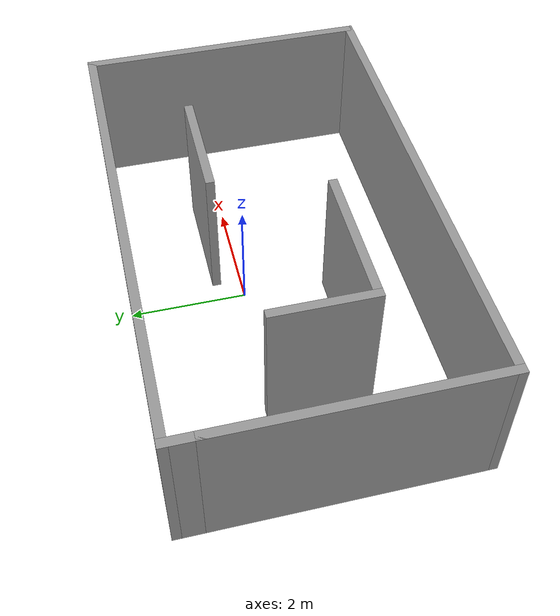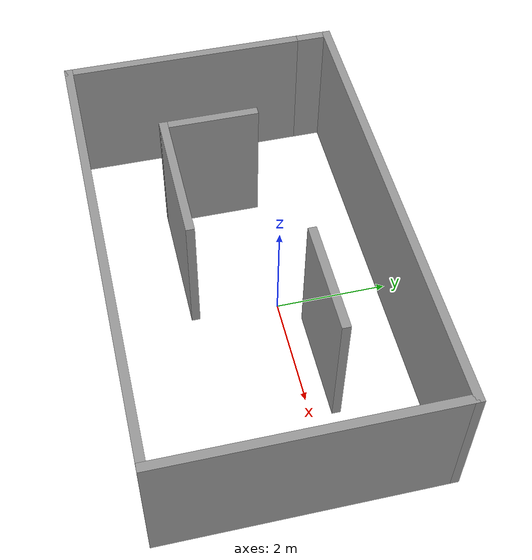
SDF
<?xml version='1.0'?>
<sdf version='1.7'>
  <model name='tp_ros'>
    <pose>-0.11754 -0.499364 0 0 -0 0</pose>
    <link name='Wall_0'>
      <collision name='Wall_0_Collision'>
        <geometry>
          <box>
            <size>4.5 0.15 2.5</size>
          </box>
        </geometry>
        <pose>0 0 1.25 0 -0 0</pose>
      </collision>
      <visual name='Wall_0_Visual'>
        <pose>0 0 1.25 0 -0 0</pose>
        <geometry>
          <box>
            <size>4.5 0.15 2.5</size>
          </box>
        </geometry>
        <material>
          <script>
            <uri>file://media/materials/scripts/gazebo.material</uri>
            <name>Gazebo/Grey</name>
          </script>
          <ambient>1 1 1 1</ambient>
        </material>
        <meta>
          <layer>0</layer>
        </meta>
      </visual>
      <pose>-4.05 -0.25 0 0 -0 1.5708</pose>
    </link>
    <link name='Wall_10'>
      <collision name='Wall_10_Collision'>
        <geometry>
          <box>
            <size>2 0.15 2.5</size>
          </box>
        </geometry>
        <pose>0 0 1.25 0 -0 0</pose>
      </collision>
      <visual name='Wall_10_Visual'>
        <pose>0 0 1.25 0 -0 0</pose>
        <geometry>
          <box>
            <size>2 0.15 2.5</size>
          </box>
        </geometry>
        <material>
          <script>
            <uri>file://media/materials/scripts/gazebo.material</uri>
            <name>Gazebo/Grey</name>
          </script>
          <ambient>1 1 1 1</ambient>
        </material>
        <meta>
          <layer>0</layer>
        </meta>
      </visual>
      <pose>1.46999 0.933827 0 0 -0 0</pose>
    </link>
    <link name='Wall_2'>
      <collision name='Wall_2_Collision'>
        <geometry>
          <box>
            <size>8.25 0.15 2.5</size>
          </box>
        </geometry>
        <pose>0 0 1.25 0 -0 0</pose>
      </collision>
      <visual name='Wall_2_Visual'>
        <pose>0 0 1.25 0 -0 0</pose>
        <geometry>
          <box>
            <size>8.25 0.15 2.5</size>
          </box>
        </geometry>
        <material>
          <script>
            <uri>file://media/materials/scripts/gazebo.material</uri>
            <name>Gazebo/Grey</name>
          </script>
          <ambient>1 1 1 1</ambient>
        </material>
        <meta>
          <layer>0</layer>
        </meta>
      </visual>
      <pose>-0 -2.425 0 0 -0 0</pose>
    </link>
    <link name='Wall_3'>
      <collision name='Wall_3_Collision'>
        <geometry>
          <box>
            <size>5 0.15 2.5</size>
          </box>
        </geometry>
        <pose>0 0 1.25 0 -0 0</pose>
      </collision>
      <visual name='Wall_3_Visual'>
        <pose>0 0 1.25 0 -0 0</pose>
        <geometry>
          <box>
            <size>5 0.15 2.5</size>
          </box>
        </geometry>
        <material>
          <script>
            <uri>file://media/materials/scripts/gazebo.material</uri>
            <name>Gazebo/Grey</name>
          </script>
          <ambient>1 1 1 1</ambient>
        </material>
        <meta>
          <layer>0</layer>
        </meta>
      </visual>
      <pose>4.05 0 0 0 -0 1.5708</pose>
    </link>
    <link name='Wall_4'>
      <collision name='Wall_4_Collision'>
        <geometry>
          <box>
            <size>8.25 0.15 2.5</size>
          </box>
        </geometry>
        <pose>0 0 1.25 0 -0 0</pose>
      </collision>
      <visual name='Wall_4_Visual'>
        <pose>0 0 1.25 0 -0 0</pose>
        <geometry>
          <box>
            <size>8.25 0.15 2.5</size>
          </box>
        </geometry>
        <material>
          <script>
            <uri>file://media/materials/scripts/gazebo.material</uri>
            <name>Gazebo/Grey</name>
          </script>
          <ambient>1 1 1 1</ambient>
        </material>
        <meta>
          <layer>0</layer>
        </meta>
      </visual>
      <pose>-0 2.425 0 0 -0 3.14159</pose>
    </link>
    <link name='Wall_5'>
      <collision name='Wall_5_Collision'>
        <geometry>
          <box>
            <size>0.65 0.15 2.5</size>
          </box>
        </geometry>
        <pose>0 0 1.25 0 -0 0</pose>
      </collision>
      <visual name='Wall_5_Visual'>
        <pose>0 0 1.25 0 -0 0</pose>
        <geometry>
          <box>
            <size>0.65 0.15 2.5</size>
          </box>
        </geometry>
        <material>
          <script>
            <uri>file://media/materials/scripts/gazebo.material</uri>
            <name>Gazebo/Grey</name>
          </script>
          <ambient>1 1 1 1</ambient>
        </material>
        <meta>
          <layer>0</layer>
        </meta>
      </visual>
      <pose>-4.05 2.175 0 0 -0 -1.5708</pose>
    </link>
    <link name='Wall_7'>
      <collision name='Wall_7_Collision'>
        <geometry>
          <box>
            <size>1.75 0.15 2.5</size>
          </box>
        </geometry>
        <pose>0 0 1.25 0 -0 0</pose>
      </collision>
      <visual name='Wall_7_Visual'>
        <pose>0 0 1.25 0 -0 0</pose>
        <geometry>
          <box>
            <size>1.75 0.15 2.5</size>
          </box>
        </geometry>
        <material>
          <script>
            <uri>file://media/materials/scripts/gazebo.material</uri>
            <name>Gazebo/Grey</name>
          </script>
          <ambient>1 1 1 1</ambient>
        </material>
        <meta>
          <layer>0</layer>
        </meta>
      </visual>
      <pose>-2.34087 -0.180994 0 0 -0 -1.5708</pose>
    </link>
    <link name='Wall_8'>
      <collision name='Wall_8_Collision'>
        <geometry>
          <box>
            <size>2.5 0.15 2.5</size>
          </box>
        </geometry>
        <pose>0 0 1.25 0 -0 0</pose>
      </collision>
      <visual name='Wall_8_Visual'>
        <pose>0 0 1.25 0 -0 0</pose>
        <geometry>
          <box>
            <size>2.5 0.15 2.5</size>
          </box>
        </geometry>
        <material>
          <script>
            <uri>file://media/materials/scripts/gazebo.material</uri>
            <name>Gazebo/Grey</name>
          </script>
          <ambient>1 1 1 1</ambient>
        </material>
        <meta>
          <layer>0</layer>
        </meta>
      </visual>
      <pose>-1.16587 -0.980994 0 0 -0 0</pose>
    </link>
    <static>1</static>
  </model>
</sdf>
